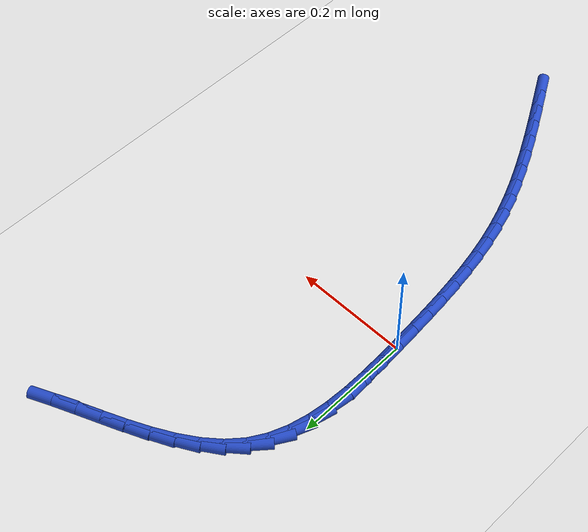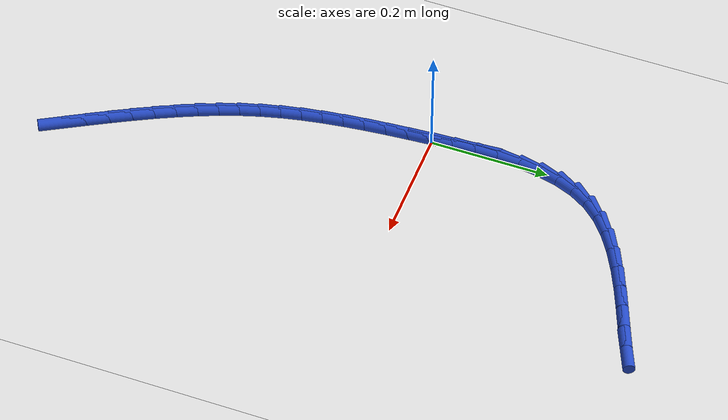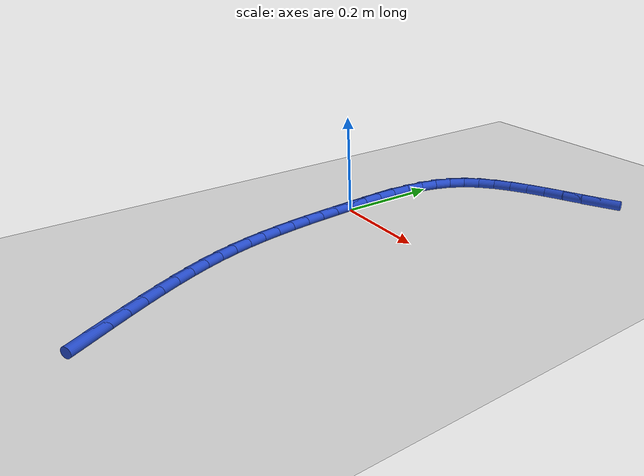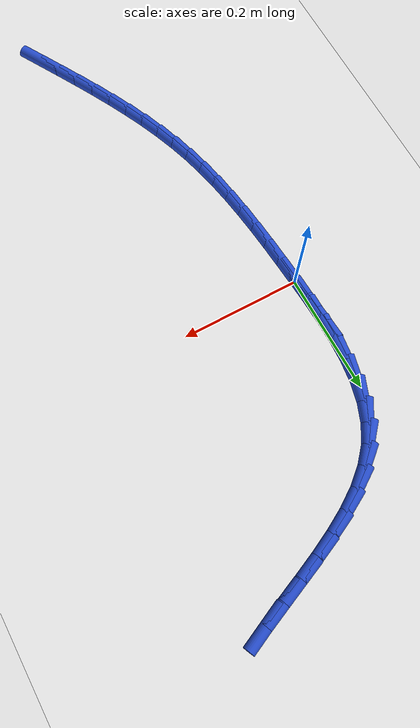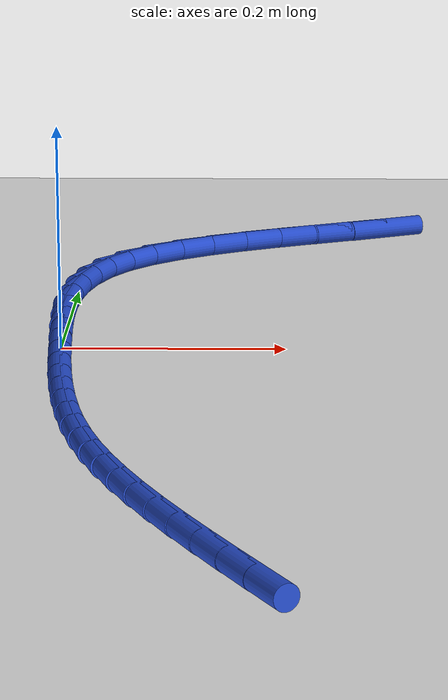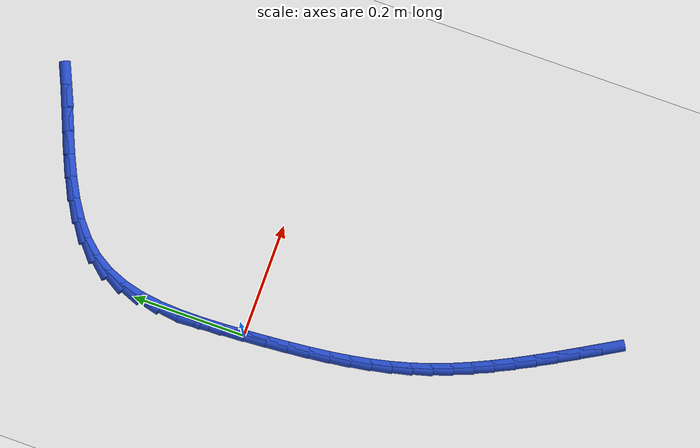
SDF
<sdf version="1.6">
 <world name="default">
  <model name="ground_plane">
   <static>1</static>
   <link name="link">
    <collision name="collision">
     <geometry><plane><normal>0 0 1</normal><size>100 100</size></plane></geometry>
     <surface><friction><ode><mu>100</mu><mu2>50</mu2></ode></friction></surface>
    </collision>
    <visual name="visual">
     <cast_shadows>0</cast_shadows>
     <geometry><plane><normal>0 0 1</normal><size>100 100</size></plane></geometry>
     <material>
      <script><uri>file://media/materials/scripts/gazebo.material</uri><name>Gazebo/WhiteGlow</name></script>
     </material>
    </visual>
   </link>
  </model>
  <model name="line">
   <link name="link_0">
    <pose>1.0842021724855044e-17 3.469446951953614e-17 0.01 0 1.57 -1.508970521655884</pose>
    <collision name="collision">
     <geometry><cylinder><radius>0.01</radius><length>0.08</length></cylinder></geometry>
    </collision>
    <visual name="visual">
     <material>
      <script><name>Gazebo/Blue</name><uri>file://media/materials/scripts/gazebo.material</uri></script>
     </material>
     <geometry><cylinder><radius>0.01</radius><length>0.08</length></cylinder></geometry>
    </visual>
   </link>
   <link name="link_1">
    <pose>-0.0023725725082027927 0.038326209172052955 0.01 0 1.57 -1.5306018567062096</pose>
    <collision name="collision">
     <geometry><cylinder><radius>0.01</radius><length>0.08</length></cylinder></geometry>
    </collision>
    <visual name="visual">
     <material>
      <script><name>Gazebo/Blue</name><uri>file://media/materials/scripts/gazebo.material</uri></script>
     </material>
     <geometry><cylinder><radius>0.01</radius><length>0.08</length></cylinder></geometry>
    </visual>
   </link>
   <link name="link_2">
    <pose>-0.003921483617635873 0.0768408824159212 0.01 0 1.57 -1.56924784026682</pose>
    <collision name="collision">
     <geometry><cylinder><radius>0.01</radius><length>0.08</length></cylinder></geometry>
    </collision>
    <visual name="visual">
     <material>
      <script><name>Gazebo/Blue</name><uri>file://media/materials/scripts/gazebo.material</uri></script>
     </material>
     <geometry><cylinder><radius>0.01</radius><length>0.08</length></cylinder></geometry>
    </visual>
   </link>
   <link name="link_3">
    <pose>-0.00398061436574998 0.11502700788780326 0.01 0 1.57 1.514702668155014</pose>
    <collision name="collision">
     <geometry><cylinder><radius>0.01</radius><length>0.08</length></cylinder></geometry>
    </collision>
    <visual name="visual">
     <material>
      <script><name>Gazebo/Blue</name><uri>file://media/materials/scripts/gazebo.material</uri></script>
     </material>
     <geometry><cylinder><radius>0.01</radius><length>0.08</length></cylinder></geometry>
    </visual>
   </link>
   <link name="link_4">
    <pose>-0.0018838457899958598 0.15236757374389748 0.01 0 1.57 1.4349221693202618</pose>
    <collision name="collision">
     <geometry><cylinder><radius>0.01</radius><length>0.08</length></cylinder></geometry>
    </collision>
    <visual name="visual">
     <material>
      <script><name>Gazebo/Blue</name><uri>file://media/materials/scripts/gazebo.material</uri></script>
     </material>
     <geometry><cylinder><radius>0.01</radius><length>0.08</length></cylinder></geometry>
    </visual>
   </link>
   <link name="link_5">
    <pose>0.0030349410721757474 0.18834556814040238 0.01 0 1.57 1.3290684312264622</pose>
    <collision name="collision">
     <geometry><cylinder><radius>0.01</radius><length>0.08</length></cylinder></geometry>
    </collision>
    <visual name="visual">
     <material>
      <script><name>Gazebo/Blue</name><uri>file://media/materials/scripts/gazebo.material</uri></script>
     </material>
     <geometry><cylinder><radius>0.01</radius><length>0.08</length></cylinder></geometry>
    </visual>
   </link>
   <link name="link_6">
    <pose>0.01144186518331409 0.2224439792335163 0.01 0 1.57 1.1935449923174148</pose>
    <collision name="collision">
     <geometry><cylinder><radius>0.01</radius><length>0.08</length></cylinder></geometry>
    </collision>
    <visual name="visual">
     <material>
      <script><name>Gazebo/Blue</name><uri>file://media/materials/scripts/gazebo.material</uri></script>
     </material>
     <geometry><cylinder><radius>0.01</radius><length>0.08</length></cylinder></geometry>
    </visual>
   </link>
   <link name="link_7">
    <pose>0.024003045505968407 0.2541457951794377 0.01 0 1.57 1.0276076320988994</pose>
    <collision name="collision">
     <geometry><cylinder><radius>0.01</radius><length>0.08</length></cylinder></geometry>
    </collision>
    <visual name="visual">
     <material>
      <script><name>Gazebo/Blue</name><uri>file://media/materials/scripts/gazebo.material</uri></script>
     </material>
     <geometry><cylinder><radius>0.01</radius><length>0.08</length></cylinder></geometry>
    </visual>
   </link>
   <link name="link_8">
    <pose>0.041384579762039464 0.282934018649209 0.01 0 1.57 0.8468864799070612</pose>
    <collision name="collision">
     <geometry><cylinder><radius>0.01</radius><length>0.08</length></cylinder></geometry>
    </collision>
    <visual name="visual">
     <material>
      <script><name>Gazebo/Blue</name><uri>file://media/materials/scripts/gazebo.material</uri></script>
     </material>
     <geometry><cylinder><radius>0.01</radius><length>0.08</length></cylinder></geometry>
    </visual>
   </link>
   <link name="link_9">
    <pose>0.06397103292938895 0.30848403833366683 0.01 0 1.57 0.6948237427598828</pose>
    <collision name="collision">
     <geometry><cylinder><radius>0.01</radius><length>0.08</length></cylinder></geometry>
    </collision>
    <visual name="visual">
     <material>
      <script><name>Gazebo/Blue</name><uri>file://media/materials/scripts/gazebo.material</uri></script>
     </material>
     <geometry><cylinder><radius>0.01</radius><length>0.08</length></cylinder></geometry>
    </visual>
   </link>
   <link name="link_10">
    <pose>0.09116015980688535 0.33114558182968595 0.01 0 1.57 0.5794943225564692</pose>
    <collision name="collision">
     <geometry><cylinder><radius>0.01</radius><length>0.08</length></cylinder></geometry>
    </collision>
    <visual name="visual">
     <material>
      <script><name>Gazebo/Blue</name><uri>file://media/materials/scripts/gazebo.material</uri></script>
     </material>
     <geometry><cylinder><radius>0.01</radius><length>0.08</length></cylinder></geometry>
    </visual>
   </link>
   <link name="link_11">
    <pose>0.12213362629826381 0.35141604155586004 0.01 0 1.57 0.49626071830486734</pose>
    <collision name="collision">
     <geometry><cylinder><radius>0.01</radius><length>0.08</length></cylinder></geometry>
    </collision>
    <visual name="visual">
     <material>
      <script><name>Gazebo/Blue</name><uri>file://media/materials/scripts/gazebo.material</uri></script>
     </material>
     <geometry><cylinder><radius>0.01</radius><length>0.08</length></cylinder></geometry>
    </visual>
   </link>
   <link name="link_12">
    <pose>0.15607309830725968 0.36979280993078245 0.01 0 1.57 0.4398036585615957</pose>
    <collision name="collision">
     <geometry><cylinder><radius>0.01</radius><length>0.08</length></cylinder></geometry>
    </collision>
    <visual name="visual">
     <material>
      <script><name>Gazebo/Blue</name><uri>file://media/materials/scripts/gazebo.material</uri></script>
     </material>
     <geometry><cylinder><radius>0.01</radius><length>0.08</length></cylinder></geometry>
    </visual>
   </link>
   <link name="link_13">
    <pose>0.19216024173760793 0.3867732793730467 0.01 0 1.57 0.4059283418044757</pose>
    <collision name="collision">
     <geometry><cylinder><radius>0.01</radius><length>0.08</length></cylinder></geometry>
    </collision>
    <visual name="visual">
     <material>
      <script><name>Gazebo/Blue</name><uri>file://media/materials/scripts/gazebo.material</uri></script>
     </material>
     <geometry><cylinder><radius>0.01</radius><length>0.08</length></cylinder></geometry>
    </visual>
   </link>
   <link name="link_14">
    <pose>0.22957672249304376 0.4028548423012461 0.01 0 1.57 0.39202308413880016</pose>
    <collision name="collision">
     <geometry><cylinder><radius>0.01</radius><length>0.08</length></cylinder></geometry>
    </collision>
    <visual name="visual">
     <material>
      <script><name>Gazebo/Blue</name><uri>file://media/materials/scripts/gazebo.material</uri></script>
     </material>
     <geometry><cylinder><radius>0.01</radius><length>0.08</length></cylinder></geometry>
    </visual>
   </link>
   <link name="link_15">
    <pose>0.2675042064773025 0.4185348911339744 0.01 0 1.57 0.3970734300450248</pose>
    <collision name="collision">
     <geometry><cylinder><radius>0.01</radius><length>0.08</length></cylinder></geometry>
    </collision>
    <visual name="visual">
     <material>
      <script><name>Gazebo/Blue</name><uri>file://media/materials/scripts/gazebo.material</uri></script>
     </material>
     <geometry><cylinder><radius>0.01</radius><length>0.08</length></cylinder></geometry>
    </visual>
   </link>
   <link name="link_16">
    <pose>0.3051243595941192 0.4343108182898249 0.01 0 1.57 0.42163821745616825</pose>
    <collision name="collision">
     <geometry><cylinder><radius>0.01</radius><length>0.08</length></cylinder></geometry>
    </collision>
    <visual name="visual">
     <material>
      <script><name>Gazebo/Blue</name><uri>file://media/materials/scripts/gazebo.material</uri></script>
     </material>
     <geometry><cylinder><radius>0.01</radius><length>0.08</length></cylinder></geometry>
    </visual>
   </link>
   <link name="link_203">
    <pose>0.1801425508092131 -0.5782312714569213 0.01 0 1.57 -1.052961053361045</pose>
    <collision name="collision">
     <geometry><cylinder><radius>0.01</radius><length>0.08</length></cylinder></geometry>
    </collision>
    <visual name="visual">
     <material>
      <script><name>Gazebo/Blue</name><uri>file://media/materials/scripts/gazebo.material</uri></script>
     </material>
     <geometry><cylinder><radius>0.01</radius><length>0.08</length></cylinder></geometry>
    </visual>
   </link>
   <link name="link_204">
    <pose>0.16044426967647546 -0.5436541391501888 0.01 0 1.57 -1.061789759235949</pose>
    <collision name="collision">
     <geometry><cylinder><radius>0.01</radius><length>0.08</length></cylinder></geometry>
    </collision>
    <visual name="visual">
     <material>
      <script><name>Gazebo/Blue</name><uri>file://media/materials/scripts/gazebo.material</uri></script>
     </material>
     <geometry><cylinder><radius>0.01</radius><length>0.08</length></cylinder></geometry>
    </visual>
   </link>
   <link name="link_205">
    <pose>0.14159697264599497 -0.509880960956184 0.01 0 1.57 -1.0740490924589825</pose>
    <collision name="collision">
     <geometry><cylinder><radius>0.01</radius><length>0.08</length></cylinder></geometry>
    </collision>
    <visual name="visual">
     <material>
      <script><name>Gazebo/Blue</name><uri>file://media/materials/scripts/gazebo.material</uri></script>
     </material>
     <geometry><cylinder><radius>0.01</radius><length>0.08</length></cylinder></geometry>
    </visual>
   </link>
   <link name="link_206">
    <pose>0.12367758468437429 -0.47682463057167507 0.01 0 1.57 -1.0916522968546338</pose>
    <collision name="collision">
     <geometry><cylinder><radius>0.01</radius><length>0.08</length></cylinder></geometry>
    </collision>
    <visual name="visual">
     <material>
      <script><name>Gazebo/Blue</name><uri>file://media/materials/scripts/gazebo.material</uri></script>
     </material>
     <geometry><cylinder><radius>0.01</radius><length>0.08</length></cylinder></geometry>
    </visual>
   </link>
   <link name="link_207">
    <pose>0.1067804094467708 -0.4443002504646302 0.01 0 1.57 -1.1148365590203277</pose>
    <collision name="collision">
     <geometry><cylinder><radius>0.01</radius><length>0.08</length></cylinder></geometry>
    </collision>
    <visual name="visual">
     <material>
      <script><name>Gazebo/Blue</name><uri>file://media/materials/scripts/gazebo.material</uri></script>
     </material>
     <geometry><cylinder><radius>0.01</radius><length>0.08</length></cylinder></geometry>
    </visual>
   </link>
   <link name="link_208">
    <pose>0.09099975986998425 -0.41212287087450483 0.01 0 1.57 -1.143718789818607</pose>
    <collision name="collision">
     <geometry><cylinder><radius>0.01</radius><length>0.08</length></cylinder></geometry>
    </collision>
    <visual name="visual">
     <material>
      <script><name>Gazebo/Blue</name><uri>file://media/materials/scripts/gazebo.material</uri></script>
     </material>
     <geometry><cylinder><radius>0.01</radius><length>0.08</length></cylinder></geometry>
    </visual>
   </link>
   <link name="link_209">
    <pose>0.07642994889081317 -0.38010754204075237 0.01 0 1.57 -1.178257346855926</pose>
    <collision name="collision">
     <geometry><cylinder><radius>0.01</radius><length>0.08</length></cylinder></geometry>
    </collision>
    <visual name="visual">
     <material>
      <script><name>Gazebo/Blue</name><uri>file://media/materials/scripts/gazebo.material</uri></script>
     </material>
     <geometry><cylinder><radius>0.01</radius><length>0.08</length></cylinder></geometry>
    </visual>
   </link>
   <link name="link_210">
    <pose>0.0631652894460565 -0.34806931420282683 0.01 0 1.57 -1.2182139003363992</pose>
    <collision name="collision">
     <geometry><cylinder><radius>0.01</radius><length>0.08</length></cylinder></geometry>
    </collision>
    <visual name="visual">
     <material>
      <script><name>Gazebo/Blue</name><uri>file://media/materials/scripts/gazebo.material</uri></script>
     </material>
     <geometry><cylinder><radius>0.01</radius><length>0.08</length></cylinder></geometry>
    </visual>
   </link>
   <link name="link_211">
    <pose>0.051300094472513186 -0.3158232376001821 0.01 0 1.57 -1.2631241661077417</pose>
    <collision name="collision">
     <geometry><cylinder><radius>0.01</radius><length>0.08</length></cylinder></geometry>
    </collision>
    <visual name="visual">
     <material>
      <script><name>Gazebo/Blue</name><uri>file://media/materials/scripts/gazebo.material</uri></script>
     </material>
     <geometry><cylinder><radius>0.01</radius><length>0.08</length></cylinder></geometry>
    </visual>
   </link>
   <link name="link_212">
    <pose>0.04092867690698194 -0.2831843624722715 0.01 0 1.57 -1.310977829398013</pose>
    <collision name="collision">
     <geometry><cylinder><radius>0.01</radius><length>0.08</length></cylinder></geometry>
    </collision>
    <visual name="visual">
     <material>
      <script><name>Gazebo/Blue</name><uri>file://media/materials/scripts/gazebo.material</uri></script>
     </material>
     <geometry><cylinder><radius>0.01</radius><length>0.08</length></cylinder></geometry>
    </visual>
   </link>
   <link name="link_213">
    <pose>0.03210537002320742 -0.24999247409462041 0.01 0 1.57 -1.3551166236117</pose>
    <collision name="collision">
     <geometry><cylinder><radius>0.01</radius><length>0.08</length></cylinder></geometry>
    </collision>
    <visual name="visual">
     <material>
      <script><name>Gazebo/Blue</name><uri>file://media/materials/scripts/gazebo.material</uri></script>
     </material>
     <geometry><cylinder><radius>0.01</radius><length>0.08</length></cylinder></geometry>
    </visual>
   </link>
   <link name="link_214">
    <pose>0.02470193251871188 -0.21620031489104194 0.01 0 1.57 -1.3935324535453952</pose>
    <collision name="collision">
     <geometry><cylinder><radius>0.01</radius><length>0.08</length></cylinder></geometry>
    </collision>
    <visual name="visual">
     <material>
      <script><name>Gazebo/Blue</name><uri>file://media/materials/scripts/gazebo.material</uri></script>
     </material>
     <geometry><cylinder><radius>0.01</radius><length>0.08</length></cylinder></geometry>
    </visual>
   </link>
   <link name="link_215">
    <pose>0.01853803534148945 -0.18179285347899293 0.01 0 1.57 -1.4261232344017611</pose>
    <collision name="collision">
     <geometry><cylinder><radius>0.01</radius><length>0.08</length></cylinder></geometry>
    </collision>
    <visual name="visual">
     <material>
      <script><name>Gazebo/Blue</name><uri>file://media/materials/scripts/gazebo.material</uri></script>
     </material>
     <geometry><cylinder><radius>0.01</radius><length>0.08</length></cylinder></geometry>
    </visual>
   </link>
   <link name="link_216">
    <pose>0.013433345509697896 -0.14675506090728135 0.01 0 1.57 -1.4529192775329478</pose>
    <collision name="collision">
     <geometry><cylinder><radius>0.01</radius><length>0.08</length></cylinder></geometry>
    </collision>
    <visual name="visual">
     <material>
      <script><name>Gazebo/Blue</name><uri>file://media/materials/scripts/gazebo.material</uri></script>
     </material>
     <geometry><cylinder><radius>0.01</radius><length>0.08</length></cylinder></geometry>
    </visual>
   </link>
   <link name="link_217">
    <pose>0.00920753004149537 -0.11107190822471799 0.01 0 1.57 -1.474045676230254</pose>
    <collision name="collision">
     <geometry><cylinder><radius>0.01</radius><length>0.08</length></cylinder></geometry>
    </collision>
    <visual name="visual">
     <material>
      <script><name>Gazebo/Blue</name><uri>file://media/materials/scripts/gazebo.material</uri></script>
     </material>
     <geometry><cylinder><radius>0.01</radius><length>0.08</length></cylinder></geometry>
    </visual>
   </link>
   <link name="link_218">
    <pose>0.005680255955039633 -0.07472836648011089 0.01 0 1.57 -1.4896901928786308</pose>
    <collision name="collision">
     <geometry><cylinder><radius>0.01</radius><length>0.08</length></cylinder></geometry>
    </collision>
    <visual name="visual">
     <material>
      <script><name>Gazebo/Blue</name><uri>file://media/materials/scripts/gazebo.material</uri></script>
     </material>
     <geometry><cylinder><radius>0.01</radius><length>0.08</length></cylinder></geometry>
    </visual>
   </link>
   <link name="link_219">
    <pose>0.002671190268488571 -0.03770940672226888 0.01 0 1.57 -1.5000782725394384</pose>
    <collision name="collision">
     <geometry><cylinder><radius>0.01</radius><length>0.08</length></cylinder></geometry>
    </collision>
    <visual name="visual">
     <material>
      <script><name>Gazebo/Blue</name><uri>file://media/materials/scripts/gazebo.material</uri></script>
     </material>
     <geometry><cylinder><radius>0.01</radius><length>0.08</length></cylinder></geometry>
    </visual>
   </link>
   <link name="link_220">
    <pose>2.42861286636753e-17 -1.3183898417423734e-16 0.01 0 1.57 -1.5054552574256659</pose>
    <collision name="collision">
     <geometry><cylinder><radius>0.01</radius><length>0.08</length></cylinder></geometry>
    </collision>
    <visual name="visual">
     <material>
      <script><name>Gazebo/Blue</name><uri>file://media/materials/scripts/gazebo.material</uri></script>
     </material>
     <geometry><cylinder><radius>0.01</radius><length>0.08</length></cylinder></geometry>
    </visual>
   </link>
   <link name="link_221">
    <pose>-0.0025136478322679316 0.038414882637883715 0.01 0 1.57 -1.5060749592865759</pose>
    <collision name="collision">
     <geometry><cylinder><radius>0.01</radius><length>0.08</length></cylinder></geometry>
    </collision>
    <visual name="visual">
     <material>
      <script><name>Gazebo/Blue</name><uri>file://media/materials/scripts/gazebo.material</uri></script>
     </material>
     <geometry><cylinder><radius>0.01</radius><length>0.08</length></cylinder></geometry>
    </visual>
   </link>
   <link name="link_222">
    <pose>-0.005050086210157647 0.0775502701425774 0.01 0 1.57 -1.5057679808707325</pose>
    <collision name="collision">
     <geometry><cylinder><radius>0.01</radius><length>0.08</length></cylinder></geometry>
    </collision>
    <visual name="visual">
     <material>
      <script><name>Gazebo/Blue</name><uri>file://media/materials/scripts/gazebo.material</uri></script>
     </material>
     <geometry><cylinder><radius>0.01</radius><length>0.08</length></cylinder></geometry>
    </visual>
   </link>
  </model>
 </world>
</sdf>
